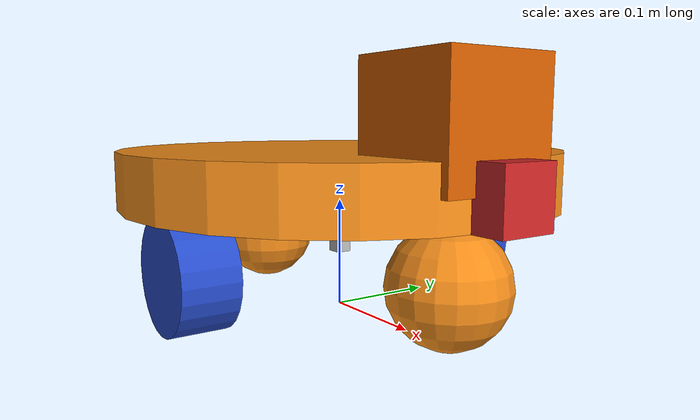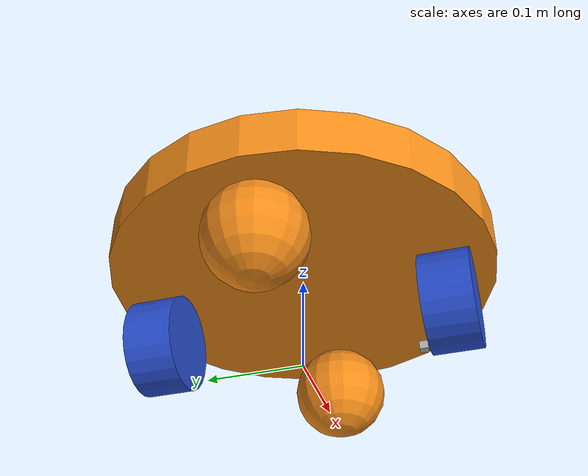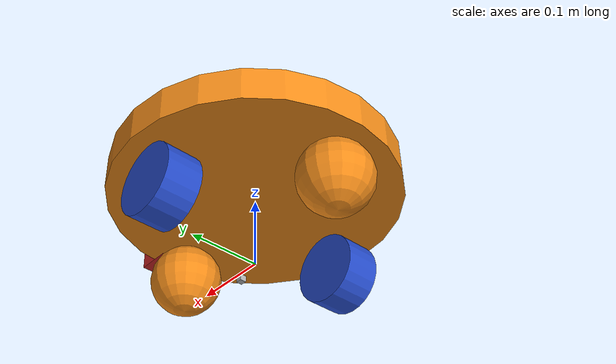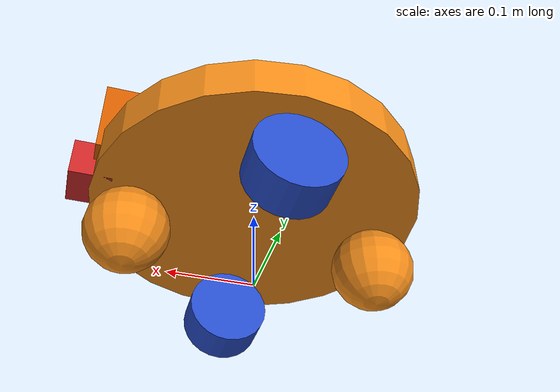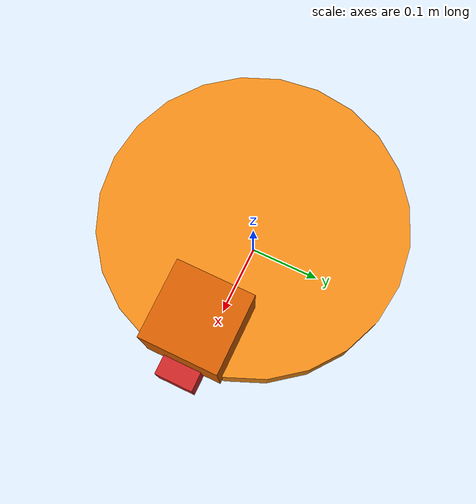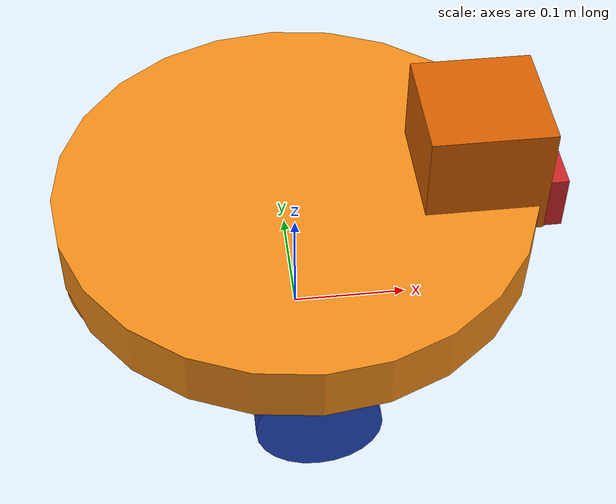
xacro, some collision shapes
<?xml version='1.0'?>

<robot name="a1_bot"
  xmlns:xacro="http://www.ros.org/wiki/xacro">
  <xacro:include filename="$(find a1_bot)/urdf/a1_bot.gazebo" />

  <link name="robot_footprint"></link>

  <joint name="robot_footprint_joint" type="fixed">
    <origin xyz="0 0 0.124" rpy="0 0 0" />
    <!-- keep robot wheels on the groud (offset value as per robot visual)-->
    <parent link="robot_footprint"/>
    <child link="chassis" />
  </joint>

  <link name='chassis'>
    <pose>0 0 0.1 0 0 0</pose>

    <inertial>
      <mass value="15.0"/>
      <origin xyz="0.0 0 0" rpy=" 0 0 0"/>
      <inertia ixx="0.1" ixy="0" ixz="0" iyy="0.1" iyz="0" izz="0.1" />
    </inertial>

    <collision name='collision'>
      <origin xyz="0 0 0" rpy=" 0 0 0"/>
      <geometry>
        <cylinder radius="0.2" length="0.05"/>
      </geometry>
    </collision>

    <visual name='chassis_visual'>
      <origin xyz="0 0 0" rpy=" 0 0 0"/>
      <geometry>
        <cylinder radius="0.2" length="0.05"/>
      </geometry>
    </visual>

    <collision name='back_caster_collision'>
      <origin xyz="-0.15 0 -0.075" rpy=" 0 0 0"/>
      <geometry>
        <sphere radius="0.0499"/>
      </geometry>
    </collision>

    <visual name='back_caster_visual'>
      <origin xyz="-0.15 0 -0.075" rpy=" 0 0 0"/>
      <geometry>
        <sphere radius="0.05"/>
      </geometry>
    </visual>

    <collision name='front_caster_collision'>
      <origin xyz="0.15 0 -0.075" rpy=" 0 0 0"/>
      <geometry>
        <sphere radius="0.0499"/>
      </geometry>
    </collision>

    <visual name='front_caster_visual'>
      <origin xyz="0.15 0 -0.075" rpy=" 0 0 0"/>
      <geometry>
        <sphere radius="0.05"/>
      </geometry>
    </visual>

  </link>

  <gazebo reference="chassis">
    <material>Gazebo/Orange</material>
  </gazebo>
  <gazebo reference="left_wheel">
    <material>Gazebo/Blue</material>
  </gazebo>
  <gazebo reference="right_wheel">
    <material>Gazebo/Blue</material>
  </gazebo>
  <gazebo reference="camera">
    <material>Gazebo/Red</material>
  </gazebo>

  <link name="left_wheel">
    <inertial>
      <origin xyz="0 0 0" rpy="0 1.5707 1.5707"/>
      <mass value="5"/>
      <inertia ixx="0.1" ixy="0" ixz="0" iyy="0.1" iyz="0" izz="0.1"/>
    </inertial>
    <visual>
      <origin xyz="0 0 0" rpy="0 1.5707 1.5707"/>
      <geometry>
        <cylinder length="0.05" radius="0.05"/>
      </geometry>
    </visual>
    <collision>
      <origin xyz="0 0 0" rpy="0 1.5707 1.5707"/>
      <geometry>
        <cylinder length="0.05" radius="0.05"/>
      </geometry>
    </collision>
  </link>

  <joint type="continuous" name="left_wheel_hinge">
    <origin xyz="0 0.15 -0.075" rpy="0 0 0"/>
    <child link="left_wheel"/>
    <parent link="chassis"/>
    <axis xyz="0 1 0" rpy="0 0 0"/>
    <limit effort="10000" velocity="1000"/>
    <dynamics damping="1.0" friction="1.0"/>
  </joint>

  <link name="right_wheel">
    <inertial>
      <origin xyz="0 0 0" rpy="0 1.5707 1.5707"/>
      <mass value="5"/>
      <inertia ixx="0.1" ixy="0" ixz="0" iyy="0.1" iyz="0" izz="0.1"/>
    </inertial>
    <visual>
      <origin xyz="0 0 0" rpy="0 1.5707 1.5707"/>
      <geometry>
        <cylinder length="0.05" radius="0.05"/>
      </geometry>
    </visual>
    <collision>
      <origin xyz="0 0 0" rpy="0 1.5707 1.5707"/>
      <geometry>
        <cylinder length="0.05" radius="0.05"/>
      </geometry>
    </collision>
  </link>

  <joint type="continuous" name="right_wheel_hinge">
    <origin xyz="0 -0.15 -0.075" rpy="0 0 0"/>
    <child link="right_wheel"/>
    <parent link="chassis"/>
    <axis xyz="0 1 0" rpy="0 0 0"/>
    <limit effort="10000" velocity="1000"/>
    <dynamics damping="1.0" friction="1.0"/>
  </joint>

  <!-- add 2D RGB camera sensor -->
  <link name="camera">
    <origin xyz="0 0 0" rpy="0 0 0"/>
    <inertial>
      <origin xyz="0 0 0" rpy="0 0 0"/>
      <mass value="0.1"/>
      <inertia ixx="1e-6" ixy="0" ixz="0" iyy="1e-6" iyz="0" izz="1e-6"/>
    </inertial>

    <visual>
      <origin xyz="0 0 0" rpy="0 0 0"/>
      <geometry>
        <box size="0.05 0.05 0.05"/>
      </geometry>
    </visual>

    <collision>
      <origin xyz="0 0 0" rpy="0 0 0"/>
      <geometry>
        <box size="0.05 0.05 0.05"/>
      </geometry>
    </collision>
  </link>

  <joint type="fixed" name="camera_joint">
    <origin xyz="0.2 0 0" rpy="0 0 0"/>
    <child link="camera"/>
    <parent link="chassis"/>
    <axis xyz="0 1 0" rpy="0 0 0"/>
    <limit effort="10000" velocity="1000"/>
    <dynamics damping="1.0" friction="1.0"/>
  </joint>

  <!-- add laser range finder sensor -->
  <link name="hokuyo">

    <inertial>
      <origin xyz="0 0 0" rpy="0 0 0"/>
      <mass value="1e-5"/>
      <inertia ixx="1e-6" ixy="0" ixz="0" iyy="1e-6" iyz="0" izz="1e-6"/>
    </inertial>

    <visual>
      <origin xyz="0 0 0" rpy="0 0 0"/>
      <geometry>
        <mesh filename="package://a1_bot/meshes/hokuyo.dae"/>
      </geometry>
    </visual>

    <collision>
      <origin xyz="0 0 0" rpy="0 0 0"/>
      <geometry>
        <box size="0.1 0.1 0.1"/>
      </geometry>
    </collision>
  </link>

  <joint type="fixed" name="hokuyo_joint">
    <origin xyz="0.15 0 0.05" rpy="0 0 0"/>
    <child link="hokuyo"/>
    <parent link="chassis"/>
    <axis xyz="0 1 0" rpy="0 0 0"/>
    <limit effort="10000" velocity="1000"/>
    <dynamics damping="1.0" friction="1.0"/>
  </joint>

  <joint name="camera_optical_joint" type="fixed">
    <origin xyz="0 0 0" rpy="-1.5707 0 -1.5707"/>
    <parent link="camera"/>
    <child link="camera_optical"/>
  </joint>

  <link name="camera_optical">
  </link>

  <!-- add sonar sensor to robot -->
  <link name="base_sonar">
    <collision>
      <origin xyz="0 0 0" rpy="0 0 0"/>
      <geometry>
        <box size="0.01 0.01 0.01"/>
      </geometry>
    </collision>
    <visual>
      <origin xyz="0 0 0" rpy="0 0 0"/>
      <geometry>
        <box size="0.01 0.01 0.01"/>
      </geometry>
    </visual>
    <inertial>
      <mass value="1e-5" />
      <origin xyz="0 0 0" rpy="0 0 0"/>
      <inertia ixx="1e-6" ixy="0" ixz="0" iyy="1e-6" iyz="0" izz="1e-6" />
    </inertial>
  </link>

  <joint name="sonar_joint" type="fixed">
    <axis xyz="0 1 0" />
    <origin rpy="0 1.57 0" xyz="0.15 -0.1 -0.03" />
    <parent link="chassis"/>
    <child link="base_sonar"/>
  </joint>

</robot>
